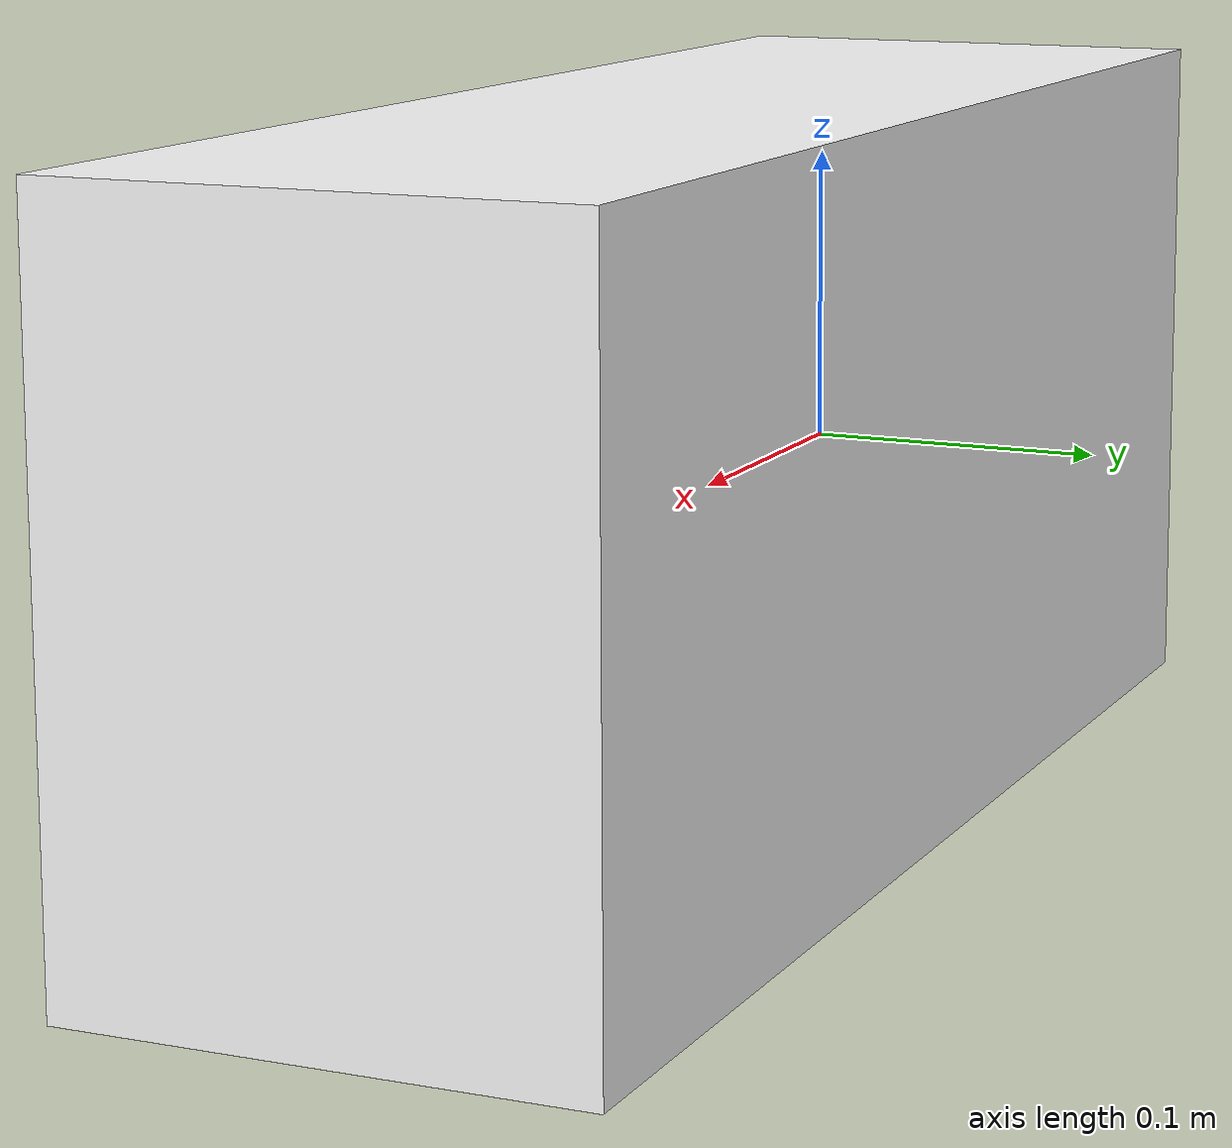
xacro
<?xml version="1.0" ?>
<robot name="coro_eyes" xmlns:xacro="http://ros.org/wiki/xacro">
    <!-- WORLD -->
    <link name="world"/>

    <!-- Robot -->
    <link name="robot"/>
    <joint name="robot_joint" type="fixed">
        <parent link="robot"/>
        <child link="world"/>
        <origin xyz="0 0 0" rpy="0 0 1.5708"/>
    </joint>

    <!-- Table -->
    <link name="table"/>
    <joint name="table_robot_joint" type="fixed">
        <parent link="table"/>
        <child link="robot"/>
        <origin xyz="0.729 0.535 0" rpy="0 0 -1.5708"/>
    </joint>

    <!-- CoRo Eyes -->
    <xacro:include filename="$(find coro_eyes_ros)/urdf/coro_eyes.urdf.xacro"/>
    <xacro:coro_eyes prefix=""/>
    <joint name="coro_eyes_joint" type="fixed">
        <parent link="coro_eyes"/>
        <child link="table"/>
        <origin xyz="-0.241641 0.189972 0.676224" rpy="3.0469772 -0.0124616 0.0079624"/>    <!-- Result of coro_eyes pose_estimation -->
    </joint>

</robot>

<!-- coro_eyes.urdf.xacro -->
<robot name="coro_eyes" xmlns:xacro="http://ros.org/wiki/xacro">
	<xacro:macro name="coro_eyes" params="prefix">

		<material name="white">
			<color rgba="1.0 1.0 1.0 1.0"/>
		</material>

		<!-- Base -->
		<link name="${prefix}coro_eyes"/>
		<link name="${prefix}coro_eyes_base">
			<visual>
				<origin xyz="0 -0.0825 -0.025" rpy="0 0 0"/>
				<geometry>
					<box size="0.505 0.165 0.23"/>
				</geometry>
					<material name="white"/>
			</visual>
			<collision>
				<origin xyz="0 -0.0825 -0.025" rpy="0 0 0"/>
				<geometry>
						<box size="0.505 0.165 0.23"/>
				</geometry>
			</collision>
			<inertial>
				<origin xyz="0 0 0" rpy="0 0 0"/>
				<mass value="10"/>
				<inertia ixx="1" ixy="0" ixz="0"
					 iyx="0" iyy="1" iyz="0"
					 izx="0" izy="0" izz="1"/>
			</inertial>
		</link>

  		<joint name="coro_eyes_root" type="fixed">
			<parent link="${prefix}coro_eyes"/>
			<child link="${prefix}coro_eyes_base"/>
			<origin xyz="0.1375 0.095 0.04" rpy="0 0 0"/>
		</joint>

	</xacro:macro>
</robot>
